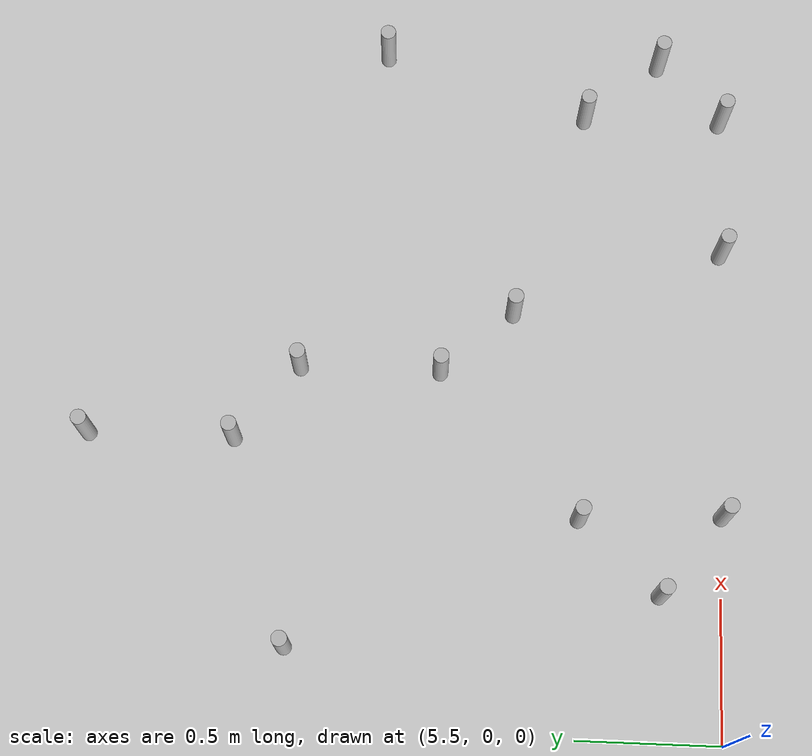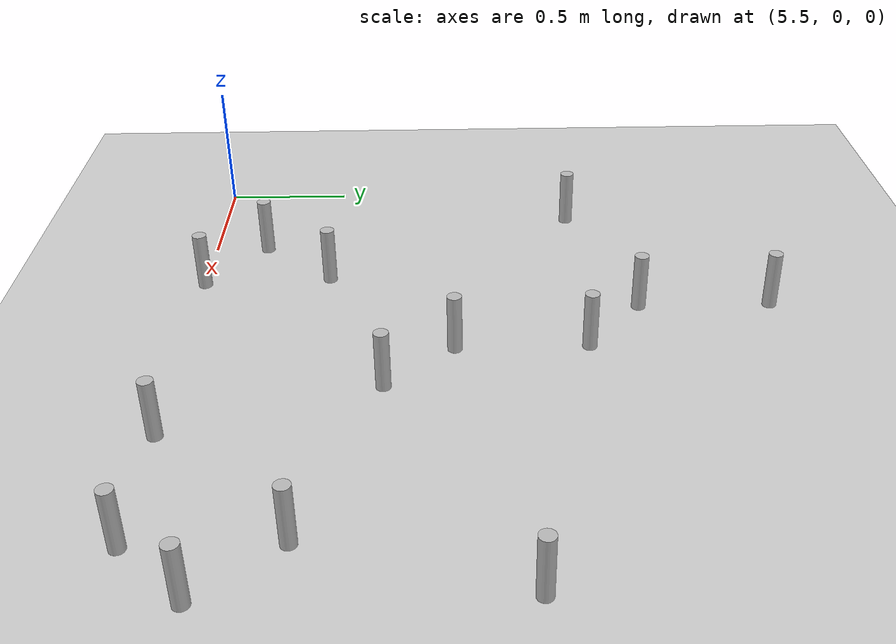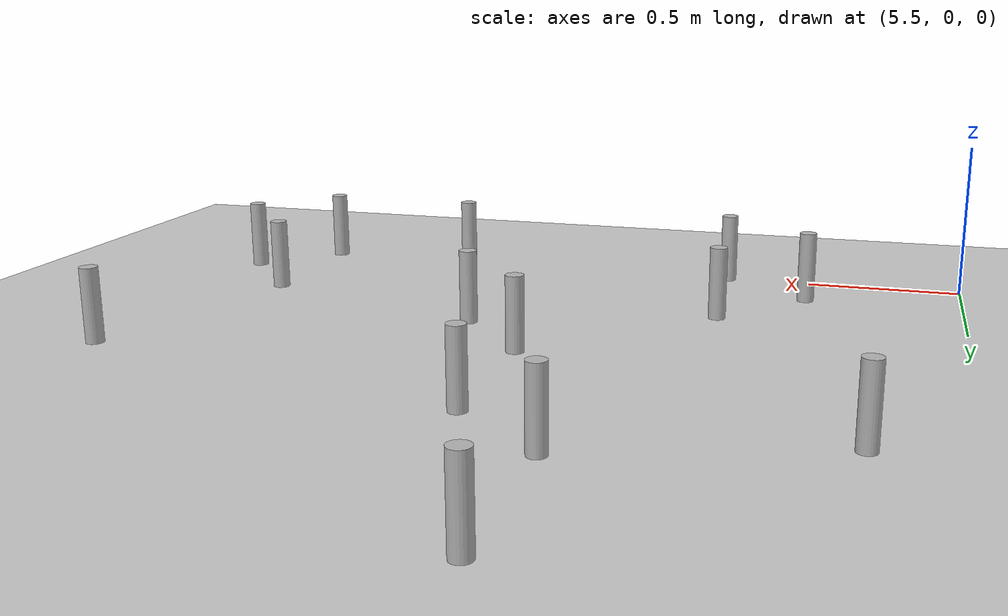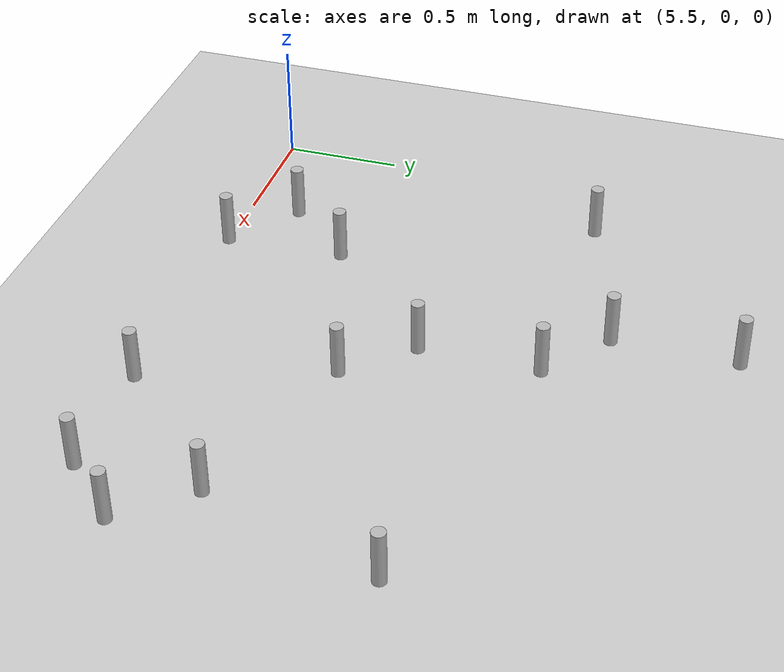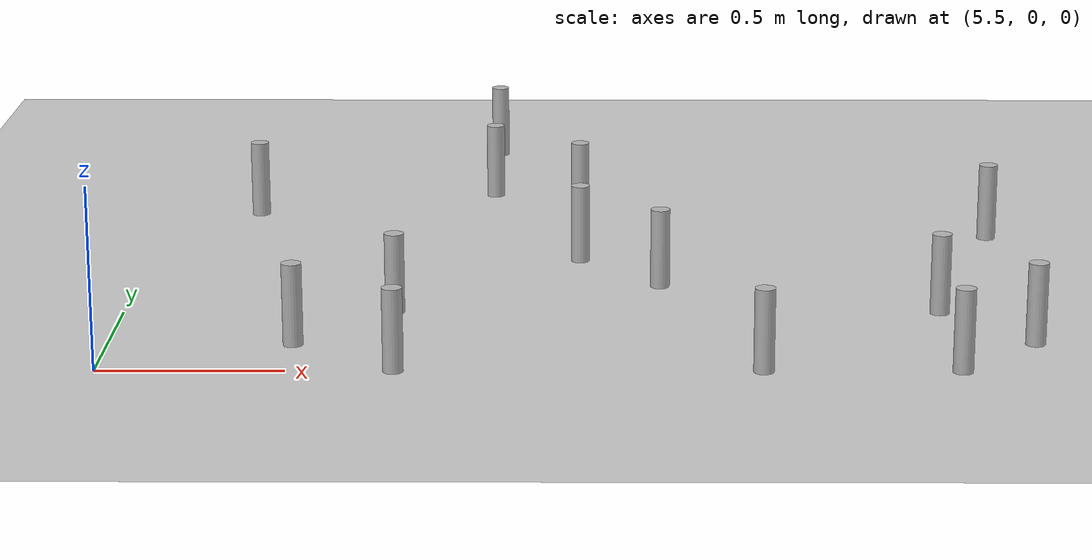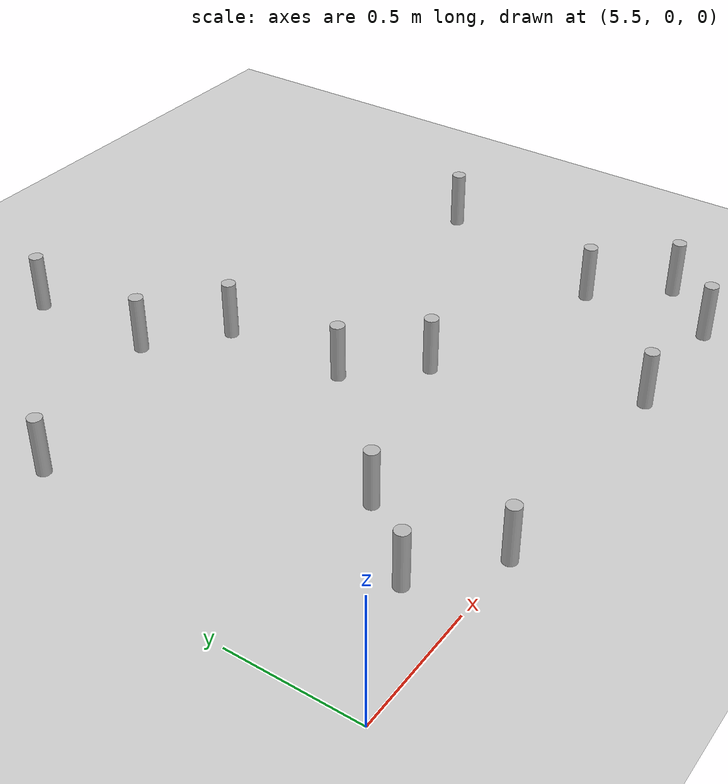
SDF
<sdf version="1.6">
 <world name="default">
  <model name="ground_plane">
   <static>1</static>
   <link name="link">
    <collision name="collision">
     <geometry><plane><normal>0 0 1</normal><size>100 100</size></plane></geometry>
     <surface><friction><ode><mu>100</mu><mu2>50</mu2></ode></friction></surface>
    </collision>
    <visual name="visual">
     <cast_shadows>0</cast_shadows>
     <geometry><plane><normal>0 0 1</normal><size>100 100</size></plane></geometry>
     <material>
      <script><uri>file://media/materials/scripts/gazebo.material</uri><name>Gazebo/Grey</name></script>
     </material>
    </visual>
   </link>
  </model>
  <model name="can8.01.23944706621">
   <link name="link">
    <pose>0 0 0.115 0 -0 0</pose>
    <inertial>
     <mass>0.39</mass>
     <inertia><ixx>0.00058</ixx><ixy>0</ixy><ixz>0</ixz><iyy>0.00058</iyy><iyz>0</iyz><izz>0.00019</izz></inertia>
    </inertial>
    <collision name="collision">
     <geometry><cylinder><radius>0.0275</radius><length>0.23</length></cylinder></geometry>
    </collision>
    <visual name="visual">
     <geometry><cylinder><radius>0.0275</radius><length>0.23</length></cylinder></geometry>
     <material>
      <script>
       <uri>model://beer/materials/scripts</uri>
       <uri>model://beer/materials/textures</uri>
       <name>Beer/Diffuse</name>
      </script>
     </material>
    </visual>
   </link>
   <pose>8.0 1.23944706621 -2e-06 1e-06 0 -9.5e-05</pose>
  </model>
  <model name="can6.283426696240.0">
   <link name="link">
    <pose>0 0 0.115 0 -0 0</pose>
    <inertial>
     <mass>0.39</mass>
     <inertia><ixx>0.00058</ixx><ixy>0</ixy><ixz>0</ixz><iyy>0.00058</iyy><iyz>0</iyz><izz>0.00019</izz></inertia>
    </inertial>
    <collision name="collision">
     <geometry><cylinder><radius>0.0275</radius><length>0.23</length></cylinder></geometry>
    </collision>
    <visual name="visual">
     <geometry><cylinder><radius>0.0275</radius><length>0.23</length></cylinder></geometry>
     <material>
      <script>
       <uri>model://beer/materials/scripts</uri>
       <uri>model://beer/materials/textures</uri>
       <name>Beer/Diffuse</name>
      </script>
     </material>
    </visual>
   </link>
   <pose>6.28342669624 0.0 -2e-06 1e-06 0 -9.5e-05</pose>
  </model>
  <model name="can6.52.23536547833">
   <link name="link">
    <pose>0 0 0.115 0 -0 0</pose>
    <inertial>
     <mass>0.39</mass>
     <inertia><ixx>0.00058</ixx><ixy>0</ixy><ixz>0</ixz><iyy>0.00058</iyy><iyz>0</iyz><izz>0.00019</izz></inertia>
    </inertial>
    <collision name="collision">
     <geometry><cylinder><radius>0.0275</radius><length>0.23</length></cylinder></geometry>
    </collision>
    <visual name="visual">
     <geometry><cylinder><radius>0.0275</radius><length>0.23</length></cylinder></geometry>
     <material>
      <script>
       <uri>model://beer/materials/scripts</uri>
       <uri>model://beer/materials/textures</uri>
       <name>Beer/Diffuse</name>
      </script>
     </material>
    </visual>
   </link>
   <pose>6.5 2.23536547833 -2e-06 1e-06 0 -9.5e-05</pose>
  </model>
  <model name="can7.776456580990.0">
   <link name="link">
    <pose>0 0 0.115 0 -0 0</pose>
    <inertial>
     <mass>0.39</mass>
     <inertia><ixx>0.00058</ixx><ixy>0</ixy><ixz>0</ixz><iyy>0.00058</iyy><iyz>0</iyz><izz>0.00019</izz></inertia>
    </inertial>
    <collision name="collision">
     <geometry><cylinder><radius>0.0275</radius><length>0.23</length></cylinder></geometry>
    </collision>
    <visual name="visual">
     <geometry><cylinder><radius>0.0275</radius><length>0.23</length></cylinder></geometry>
     <material>
      <script>
       <uri>model://beer/materials/scripts</uri>
       <uri>model://beer/materials/textures</uri>
       <name>Beer/Diffuse</name>
      </script>
     </material>
    </visual>
   </link>
   <pose>7.77645658099 0.0 -2e-06 1e-06 0 -9.5e-05</pose>
  </model>
  <model name="can7.773467231880.5">
   <link name="link">
    <pose>0 0 0.115 0 -0 0</pose>
    <inertial>
     <mass>0.39</mass>
     <inertia><ixx>0.00058</ixx><ixy>0</ixy><ixz>0</ixz><iyy>0.00058</iyy><iyz>0</iyz><izz>0.00019</izz></inertia>
    </inertial>
    <collision name="collision">
     <geometry><cylinder><radius>0.0275</radius><length>0.23</length></cylinder></geometry>
    </collision>
    <visual name="visual">
     <geometry><cylinder><radius>0.0275</radius><length>0.23</length></cylinder></geometry>
     <material>
      <script>
       <uri>model://beer/materials/scripts</uri>
       <uri>model://beer/materials/textures</uri>
       <name>Beer/Diffuse</name>
      </script>
     </material>
    </visual>
   </link>
   <pose>7.77346723188 0.5 -2e-06 1e-06 0 -9.5e-05</pose>
  </model>
  <model name="can7.00.745959179179">
   <link name="link">
    <pose>0 0 0.115 0 -0 0</pose>
    <inertial>
     <mass>0.39</mass>
     <inertia><ixx>0.00058</ixx><ixy>0</ixy><ixz>0</ixz><iyy>0.00058</iyy><iyz>0</iyz><izz>0.00019</izz></inertia>
    </inertial>
    <collision name="collision">
     <geometry><cylinder><radius>0.0275</radius><length>0.23</length></cylinder></geometry>
    </collision>
    <visual name="visual">
     <geometry><cylinder><radius>0.0275</radius><length>0.23</length></cylinder></geometry>
     <material>
      <script>
       <uri>model://beer/materials/scripts</uri>
       <uri>model://beer/materials/textures</uri>
       <name>Beer/Diffuse</name>
      </script>
     </material>
    </visual>
   </link>
   <pose>7.0 0.745959179179 -2e-06 1e-06 0 -9.5e-05</pose>
  </model>
  <model name="can7.254782019610.0">
   <link name="link">
    <pose>0 0 0.115 0 -0 0</pose>
    <inertial>
     <mass>0.39</mass>
     <inertia><ixx>0.00058</ixx><ixy>0</ixy><ixz>0</ixz><iyy>0.00058</iyy><iyz>0</iyz><izz>0.00019</izz></inertia>
    </inertial>
    <collision name="collision">
     <geometry><cylinder><radius>0.0275</radius><length>0.23</length></cylinder></geometry>
    </collision>
    <visual name="visual">
     <geometry><cylinder><radius>0.0275</radius><length>0.23</length></cylinder></geometry>
     <material>
      <script>
       <uri>model://beer/materials/scripts</uri>
       <uri>model://beer/materials/textures</uri>
       <name>Beer/Diffuse</name>
      </script>
     </material>
    </visual>
   </link>
   <pose>7.25478201961 0.0 -2e-06 1e-06 0 -9.5e-05</pose>
  </model>
  <model name="can8.00.22855827205">
   <link name="link">
    <pose>0 0 0.115 0 -0 0</pose>
    <inertial>
     <mass>0.39</mass>
     <inertia><ixx>0.00058</ixx><ixy>0</ixy><ixz>0</ixz><iyy>0.00058</iyy><iyz>0</iyz><izz>0.00019</izz></inertia>
    </inertial>
    <collision name="collision">
     <geometry><cylinder><radius>0.0275</radius><length>0.23</length></cylinder></geometry>
    </collision>
    <visual name="visual">
     <geometry><cylinder><radius>0.0275</radius><length>0.23</length></cylinder></geometry>
     <material>
      <script>
       <uri>model://beer/materials/scripts</uri>
       <uri>model://beer/materials/textures</uri>
       <name>Beer/Diffuse</name>
      </script>
     </material>
    </visual>
   </link>
   <pose>8.0 0.22855827205 -2e-06 1e-06 0 -9.5e-05</pose>
  </model>
  <model name="can6.51.71961596077">
   <link name="link">
    <pose>0 0 0.115 0 -0 0</pose>
    <inertial>
     <mass>0.39</mass>
     <inertia><ixx>0.00058</ixx><ixy>0</ixy><ixz>0</ixz><iyy>0.00058</iyy><iyz>0</iyz><izz>0.00019</izz></inertia>
    </inertial>
    <collision name="collision">
     <geometry><cylinder><radius>0.0275</radius><length>0.23</length></cylinder></geometry>
    </collision>
    <visual name="visual">
     <geometry><cylinder><radius>0.0275</radius><length>0.23</length></cylinder></geometry>
     <material>
      <script>
       <uri>model://beer/materials/scripts</uri>
       <uri>model://beer/materials/textures</uri>
       <name>Beer/Diffuse</name>
      </script>
     </material>
    </visual>
   </link>
   <pose>6.5 1.71961596077 -2e-06 1e-06 0 -9.5e-05</pose>
  </model>
  <model name="can6.256168839330.5">
   <link name="link">
    <pose>0 0 0.115 0 -0 0</pose>
    <inertial>
     <mass>0.39</mass>
     <inertia><ixx>0.00058</ixx><ixy>0</ixy><ixz>0</ixz><iyy>0.00058</iyy><iyz>0</iyz><izz>0.00019</izz></inertia>
    </inertial>
    <collision name="collision">
     <geometry><cylinder><radius>0.0275</radius><length>0.23</length></cylinder></geometry>
    </collision>
    <visual name="visual">
     <geometry><cylinder><radius>0.0275</radius><length>0.23</length></cylinder></geometry>
     <material>
      <script>
       <uri>model://beer/materials/scripts</uri>
       <uri>model://beer/materials/textures</uri>
       <name>Beer/Diffuse</name>
      </script>
     </material>
    </visual>
   </link>
   <pose>6.25616883933 0.5 -2e-06 1e-06 0 -9.5e-05</pose>
  </model>
  <model name="can6.771294339531.0">
   <link name="link">
    <pose>0 0 0.115 0 -0 0</pose>
    <inertial>
     <mass>0.39</mass>
     <inertia><ixx>0.00058</ixx><ixy>0</ixy><ixz>0</ixz><iyy>0.00058</iyy><iyz>0</iyz><izz>0.00019</izz></inertia>
    </inertial>
    <collision name="collision">
     <geometry><cylinder><radius>0.0275</radius><length>0.23</length></cylinder></geometry>
    </collision>
    <visual name="visual">
     <geometry><cylinder><radius>0.0275</radius><length>0.23</length></cylinder></geometry>
     <material>
      <script>
       <uri>model://beer/materials/scripts</uri>
       <uri>model://beer/materials/textures</uri>
       <name>Beer/Diffuse</name>
      </script>
     </material>
    </visual>
   </link>
   <pose>6.77129433953 1.0 -2e-06 1e-06 0 -9.5e-05</pose>
  </model>
  <model name="can6.00.216617186012">
   <link name="link">
    <pose>0 0 0.115 0 -0 0</pose>
    <inertial>
     <mass>0.39</mass>
     <inertia><ixx>0.00058</ixx><ixy>0</ixy><ixz>0</ixz><iyy>0.00058</iyy><iyz>0</iyz><izz>0.00019</izz></inertia>
    </inertial>
    <collision name="collision">
     <geometry><cylinder><radius>0.0275</radius><length>0.23</length></cylinder></geometry>
    </collision>
    <visual name="visual">
     <geometry><cylinder><radius>0.0275</radius><length>0.23</length></cylinder></geometry>
     <material>
      <script>
       <uri>model://beer/materials/scripts</uri>
       <uri>model://beer/materials/textures</uri>
       <name>Beer/Diffuse</name>
      </script>
     </material>
    </visual>
   </link>
   <pose>6.0 0.216617186012 -2e-06 1e-06 0 -9.5e-05</pose>
  </model>
  <model name="can6.769303304641.5">
   <link name="link">
    <pose>0 0 0.115 0 -0 0</pose>
    <inertial>
     <mass>0.39</mass>
     <inertia><ixx>0.00058</ixx><ixy>0</ixy><ixz>0</ixz><iyy>0.00058</iyy><iyz>0</iyz><izz>0.00019</izz></inertia>
    </inertial>
    <collision name="collision">
     <geometry><cylinder><radius>0.0275</radius><length>0.23</length></cylinder></geometry>
    </collision>
    <visual name="visual">
     <geometry><cylinder><radius>0.0275</radius><length>0.23</length></cylinder></geometry>
     <material>
      <script>
       <uri>model://beer/materials/scripts</uri>
       <uri>model://beer/materials/textures</uri>
       <name>Beer/Diffuse</name>
      </script>
     </material>
    </visual>
   </link>
   <pose>6.76930330464 1.5 -2e-06 1e-06 0 -9.5e-05</pose>
  </model>
  <model name="can5.77401475681.5">
   <link name="link">
    <pose>0 0 0.115 0 -0 0</pose>
    <inertial>
     <mass>0.39</mass>
     <inertia><ixx>0.00058</ixx><ixy>0</ixy><ixz>0</ixz><iyy>0.00058</iyy><iyz>0</iyz><izz>0.00019</izz></inertia>
    </inertial>
    <collision name="collision">
     <geometry><cylinder><radius>0.0275</radius><length>0.23</length></cylinder></geometry>
    </collision>
    <visual name="visual">
     <geometry><cylinder><radius>0.0275</radius><length>0.23</length></cylinder></geometry>
     <material>
      <script>
       <uri>model://beer/materials/scripts</uri>
       <uri>model://beer/materials/textures</uri>
       <name>Beer/Diffuse</name>
      </script>
     </material>
    </visual>
   </link>
   <pose>5.7740147568 1.5 -2e-06 1e-06 0 -9.5e-05</pose>
  </model>
 </world>
</sdf>
